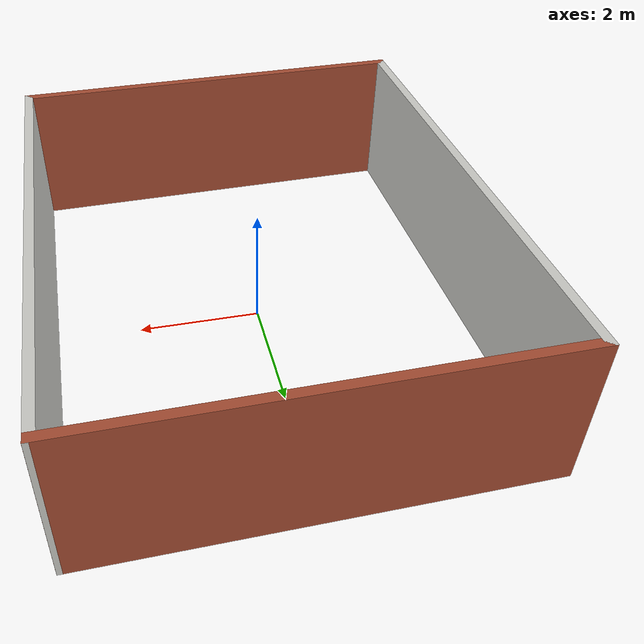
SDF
<?xml version='1.0'?>
<sdf version='1.6'>
  <model name='Untitled1'>
    <link name='Wall_0'>
      <pose frame=''>-3.44554 0.000523 0 0 0 -1.5708</pose>
      <self_collide>0</self_collide>
      <kinematic>0</kinematic>
      <visual name='Wall_0_Visual'>
        <pose frame=''>0 0 1.25 0 -0 0</pose>
        <geometry>
          <box>
            <size>8.5 0.15 2.5</size>
          </box>
        </geometry>
        <material>
          <script>
            <uri>file://media/materials/scripts/gazebo.material</uri>
            <name>Gazebo/CeilingTiled</name>
          </script>
          <ambient>0.996078 0.47451 0.0196078 1</ambient>
          <shader type='pixel'/>
          <diffuse>1 1 1 1</diffuse>
          <specular>0 0 0 1</specular>
          <emissive>0 0 0 1</emissive>
        </material>
        <meta>
          <layer>0</layer>
        </meta>
        <transparency>0</transparency>
        <cast_shadows>1</cast_shadows>
      </visual>
      <collision name='Wall_0_Collision'>
        <laser_retro>0</laser_retro>
        <max_contacts>10</max_contacts>
        <pose frame=''>0 0 1.25 0 -0 0</pose>
        <geometry>
          <box>
            <size>8.5 0.15 2.5</size>
          </box>
        </geometry>
        <surface>
          <friction>
            <ode>
              <mu>1</mu>
              <mu2>1</mu2>
              <fdir1>0 0 0</fdir1>
              <slip1>0</slip1>
              <slip2>0</slip2>
            </ode>
            <torsional>
              <coefficient>1</coefficient>
              <patch_radius>0</patch_radius>
              <surface_radius>0</surface_radius>
              <use_patch_radius>1</use_patch_radius>
              <ode>
                <slip>0</slip>
              </ode>
            </torsional>
          </friction>
          <bounce>
            <restitution_coefficient>0</restitution_coefficient>
            <threshold>1e+06</threshold>
          </bounce>
          <contact>
            <collide_without_contact>0</collide_without_contact>
            <collide_without_contact_bitmask>1</collide_without_contact_bitmask>
            <collide_bitmask>1</collide_bitmask>
            <ode>
              <soft_cfm>0</soft_cfm>
              <soft_erp>0.2</soft_erp>
              <kp>1e+13</kp>
              <kd>1</kd>
              <max_vel>0.01</max_vel>
              <min_depth>0</min_depth>
            </ode>
            <bullet>
              <split_impulse>1</split_impulse>
              <split_impulse_penetration_threshold>-0.01</split_impulse_penetration_threshold>
              <soft_cfm>0</soft_cfm>
              <soft_erp>0.2</soft_erp>
              <kp>1e+13</kp>
              <kd>1</kd>
            </bullet>
          </contact>
        </surface>
      </collision>
    </link>
    <link name='Wall_3'>
      <pose frame=''>-0.020542 4.17552 0 0 -0 3.14159</pose>
      <self_collide>0</self_collide>
      <kinematic>0</kinematic>
      <visual name='Wall_3_Visual'>
        <pose frame=''>0 0 1.25 0 -0 0</pose>
        <geometry>
          <box>
            <size>7 0.15 2.5</size>
          </box>
        </geometry>
        <material>
          <script>
            <uri>file://media/materials/scripts/gazebo.material</uri>
            <name>Gazebo/Bricks</name>
          </script>
          <ambient>0 0 0.498039 1</ambient>
          <shader type='pixel'/>
          <diffuse>1 1 1 1</diffuse>
          <specular>0.2 0.2 0.2 1</specular>
          <emissive>0 0 0 1</emissive>
        </material>
        <meta>
          <layer>0</layer>
        </meta>
        <transparency>0</transparency>
        <cast_shadows>1</cast_shadows>
      </visual>
      <collision name='Wall_3_Collision'>
        <laser_retro>0</laser_retro>
        <max_contacts>10</max_contacts>
        <pose frame=''>0 0 1.25 0 -0 0</pose>
        <geometry>
          <box>
            <size>7 0.15 2.5</size>
          </box>
        </geometry>
        <surface>
          <friction>
            <ode>
              <mu>1</mu>
              <mu2>1</mu2>
              <fdir1>0 0 0</fdir1>
              <slip1>0</slip1>
              <slip2>0</slip2>
            </ode>
            <torsional>
              <coefficient>1</coefficient>
              <patch_radius>0</patch_radius>
              <surface_radius>0</surface_radius>
              <use_patch_radius>1</use_patch_radius>
              <ode>
                <slip>0</slip>
              </ode>
            </torsional>
          </friction>
          <bounce>
            <restitution_coefficient>0</restitution_coefficient>
            <threshold>1e+06</threshold>
          </bounce>
          <contact>
            <collide_without_contact>0</collide_without_contact>
            <collide_without_contact_bitmask>1</collide_without_contact_bitmask>
            <collide_bitmask>1</collide_bitmask>
            <ode>
              <soft_cfm>0</soft_cfm>
              <soft_erp>0.2</soft_erp>
              <kp>1e+13</kp>
              <kd>1</kd>
              <max_vel>0.01</max_vel>
              <min_depth>0</min_depth>
            </ode>
            <bullet>
              <split_impulse>1</split_impulse>
              <split_impulse_penetration_threshold>-0.01</split_impulse_penetration_threshold>
              <soft_cfm>0</soft_cfm>
              <soft_erp>0.2</soft_erp>
              <kp>1e+13</kp>
              <kd>1</kd>
            </bullet>
          </contact>
        </surface>
      </collision>
    </link>
    <link name='Wall_6'>
      <pose frame=''>3.425 0.066396 0 0 -0 1.5758</pose>
      <self_collide>0</self_collide>
      <kinematic>0</kinematic>
      <visual name='Wall_6_Visual'>
        <pose frame=''>0 0 1.25 0 -0 0</pose>
        <geometry>
          <box>
            <size>8.36836 0.15 2.5</size>
          </box>
        </geometry>
        <material>
          <script>
            <uri>file://media/materials/scripts/gazebo.material</uri>
            <name>Gazebo/CeilingTiled</name>
          </script>
          <ambient>1 1 0 1</ambient>
          <shader type='pixel'/>
          <diffuse>1 1 1 1</diffuse>
          <specular>0 0 0 1</specular>
          <emissive>0 0 0 1</emissive>
        </material>
        <meta>
          <layer>0</layer>
        </meta>
        <transparency>0</transparency>
        <cast_shadows>1</cast_shadows>
      </visual>
      <collision name='Wall_6_Collision'>
        <laser_retro>0</laser_retro>
        <max_contacts>10</max_contacts>
        <pose frame=''>0 0 1.25 0 -0 0</pose>
        <geometry>
          <box>
            <size>8.36836 0.15 2.5</size>
          </box>
        </geometry>
        <surface>
          <friction>
            <ode>
              <mu>1</mu>
              <mu2>1</mu2>
              <fdir1>0 0 0</fdir1>
              <slip1>0</slip1>
              <slip2>0</slip2>
            </ode>
            <torsional>
              <coefficient>1</coefficient>
              <patch_radius>0</patch_radius>
              <surface_radius>0</surface_radius>
              <use_patch_radius>1</use_patch_radius>
              <ode>
                <slip>0</slip>
              </ode>
            </torsional>
          </friction>
          <bounce>
            <restitution_coefficient>0</restitution_coefficient>
            <threshold>1e+06</threshold>
          </bounce>
          <contact>
            <collide_without_contact>0</collide_without_contact>
            <collide_without_contact_bitmask>1</collide_without_contact_bitmask>
            <collide_bitmask>1</collide_bitmask>
            <ode>
              <soft_cfm>0</soft_cfm>
              <soft_erp>0.2</soft_erp>
              <kp>1e+13</kp>
              <kd>1</kd>
              <max_vel>0.01</max_vel>
              <min_depth>0</min_depth>
            </ode>
            <bullet>
              <split_impulse>1</split_impulse>
              <split_impulse_penetration_threshold>-0.01</split_impulse_penetration_threshold>
              <soft_cfm>0</soft_cfm>
              <soft_erp>0.2</soft_erp>
              <kp>1e+13</kp>
              <kd>1</kd>
            </bullet>
          </contact>
        </surface>
      </collision>
    </link>
    <link name='Wall_8'>
      <pose frame=''>0 -4.1086 0 0 -0 0.019116</pose>
      <self_collide>0</self_collide>
      <kinematic>0</kinematic>
      <visual name='Wall_8_Visual'>
        <pose frame=''>0 0 1.25 0 -0 0</pose>
        <geometry>
          <box>
            <size>7.04234 0.15 2.5</size>
          </box>
        </geometry>
        <material>
          <script>
            <uri>file://media/materials/scripts/gazebo.material</uri>
            <name>Gazebo/Bricks</name>
          </script>
          <ambient>0.666667 0 0 1</ambient>
          <shader type='pixel'/>
          <diffuse>1 1 1 1</diffuse>
          <specular>0.2 0.2 0.2 1</specular>
          <emissive>0 0 0 1</emissive>
        </material>
        <meta>
          <layer>0</layer>
        </meta>
        <transparency>0</transparency>
        <cast_shadows>1</cast_shadows>
      </visual>
      <collision name='Wall_8_Collision'>
        <laser_retro>0</laser_retro>
        <max_contacts>10</max_contacts>
        <pose frame=''>0 0 1.25 0 -0 0</pose>
        <geometry>
          <box>
            <size>7.04234 0.15 2.5</size>
          </box>
        </geometry>
        <surface>
          <friction>
            <ode>
              <mu>1</mu>
              <mu2>1</mu2>
              <fdir1>0 0 0</fdir1>
              <slip1>0</slip1>
              <slip2>0</slip2>
            </ode>
            <torsional>
              <coefficient>1</coefficient>
              <patch_radius>0</patch_radius>
              <surface_radius>0</surface_radius>
              <use_patch_radius>1</use_patch_radius>
              <ode>
                <slip>0</slip>
              </ode>
            </torsional>
          </friction>
          <bounce>
            <restitution_coefficient>0</restitution_coefficient>
            <threshold>1e+06</threshold>
          </bounce>
          <contact>
            <collide_without_contact>0</collide_without_contact>
            <collide_without_contact_bitmask>1</collide_without_contact_bitmask>
            <collide_bitmask>1</collide_bitmask>
            <ode>
              <soft_cfm>0</soft_cfm>
              <soft_erp>0.2</soft_erp>
              <kp>1e+13</kp>
              <kd>1</kd>
              <max_vel>0.01</max_vel>
              <min_depth>0</min_depth>
            </ode>
            <bullet>
              <split_impulse>1</split_impulse>
              <split_impulse_penetration_threshold>-0.01</split_impulse_penetration_threshold>
              <soft_cfm>0</soft_cfm>
              <soft_erp>0.2</soft_erp>
              <kp>1e+13</kp>
              <kd>1</kd>
            </bullet>
          </contact>
        </surface>
      </collision>
    </link>
    <static>1</static>
    <allow_auto_disable>1</allow_auto_disable>
  </model>
</sdf>
